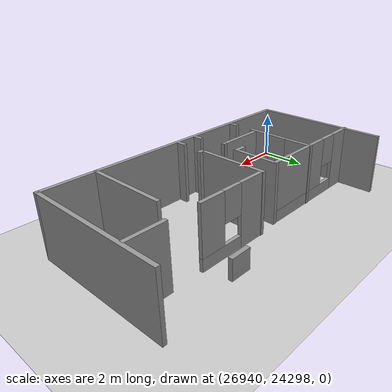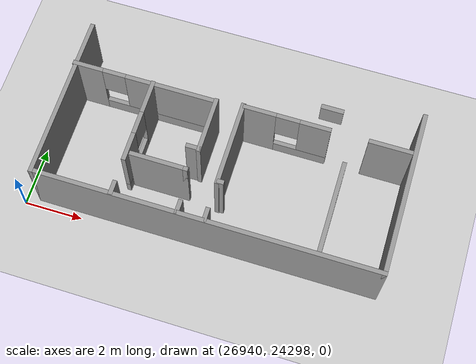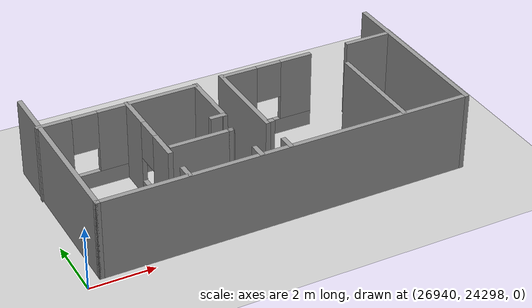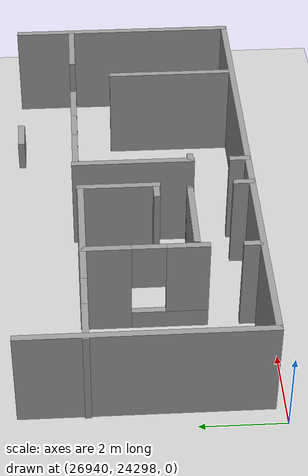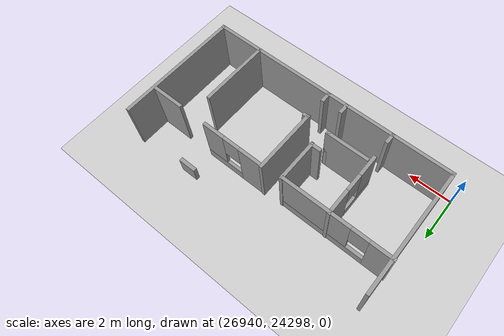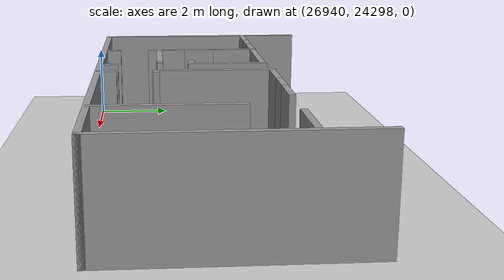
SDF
<sdf version="1.6">
 <world name="default">
  <model name="ground_plane">
   <static>1</static>
   <link name="link">
    <collision name="collision">
     <geometry><plane><normal>0 0 1</normal><size>100 100</size></plane></geometry>
     <surface><friction><ode><mu>100</mu><mu2>50</mu2></ode></friction></surface>
    </collision>
    <visual name="visual">
     <cast_shadows>0</cast_shadows>
     <geometry><plane><normal>0 0 1</normal><size>100 100</size></plane></geometry>
     <material>
      <script><uri>file://media/materials/scripts/gazebo.material</uri><name>Gazebo/Grey</name></script>
     </material>
    </visual>
   </link>
  </model>
  <model name="office01add">
   <pose>-4.3 -4.1 0 0 -0 0</pose>
   <link name="Wall_21">
    <collision name="Wall_21_Collision">
     <geometry><box><size>5.75 0.15 2.5</size></box></geometry>
     <pose>0 0 1.25 0 -0 0</pose>
    </collision>
    <visual name="Wall_21_Visual">
     <pose>0 0 1.25 0 -0 0</pose>
     <geometry><box><size>5.75 0.15 2.5</size></box></geometry>
     <material>
      <script><uri>file://media/materials/scripts/gazebo.material</uri><name>Gazebo/Grey</name></script>
      <ambient>1 1 1 1</ambient>
     </material>
     <meta><layer>0</layer></meta>
    </visual>
    <pose>26944.8 24305.2 0 0 -0 -1.5708</pose>
   </link>
   <link name="Wall_23">
    <collision name="Wall_23_Collision">
     <geometry><box><size>11.75 0.15 2.5</size></box></geometry>
     <pose>0 0 1.25 0 -0 0</pose>
    </collision>
    <visual name="Wall_23_Visual">
     <pose>0 0 1.25 0 -0 0</pose>
     <geometry><box><size>11.75 0.15 2.5</size></box></geometry>
     <material>
      <script><uri>file://media/materials/scripts/gazebo.material</uri><name>Gazebo/Grey</name></script>
      <ambient>1 1 1 1</ambient>
     </material>
     <meta><layer>0</layer></meta>
    </visual>
    <pose>26950.6 24302.4 0 0 -0 0</pose>
   </link>
   <link name="Wall_25">
    <collision name="Wall_25_Collision">
     <geometry><box><size>5.75 0.15 2.5</size></box></geometry>
     <pose>0 0 1.25 0 -0 0</pose>
    </collision>
    <visual name="Wall_25_Visual">
     <pose>0 0 1.25 0 -0 0</pose>
     <geometry><box><size>5.75 0.15 2.5</size></box></geometry>
     <material>
      <script><uri>file://media/materials/scripts/gazebo.material</uri><name>Gazebo/Grey</name></script>
      <ambient>1 1 1 1</ambient>
     </material>
     <meta><layer>0</layer></meta>
    </visual>
    <pose>26956.4 24305.2 0 0 -0 1.5708</pose>
   </link>
   <link name="Wall_27">
    <collision name="Wall_27_Collision">
     <geometry><box><size>3 0.15 2.5</size></box></geometry>
     <pose>0 0 1.25 0 -0 0</pose>
    </collision>
    <visual name="Wall_27_Visual">
     <pose>0 0 1.25 0 -0 0</pose>
     <geometry><box><size>3 0.15 2.5</size></box></geometry>
     <material>
      <script><uri>file://media/materials/scripts/gazebo.material</uri><name>Gazebo/Grey</name></script>
      <ambient>1 1 1 1</ambient>
     </material>
     <meta><layer>0</layer></meta>
    </visual>
    <pose>26950.6 24305.2 0 0 -0 1.5708</pose>
   </link>
   <link name="Wall_32">
    <collision name="Wall_32_Collision">
     <geometry><box><size>0.5 0.15 2.5</size></box></geometry>
     <pose>0 0 1.25 0 -0 0</pose>
    </collision>
    <visual name="Wall_32_Visual">
     <pose>0 0 1.25 0 -0 0</pose>
     <geometry><box><size>0.5 0.15 2.5</size></box></geometry>
     <material>
      <script><uri>file://media/materials/scripts/gazebo.material</uri><name>Gazebo/Grey</name></script>
      <ambient>1 1 1 1</ambient>
     </material>
     <meta><layer>0</layer></meta>
    </visual>
    <pose>26950.6 24302.6 0 0 -0 1.5708</pose>
   </link>
   <link name="Wall_34">
    <pose>26947.2 24306.5 0 0 -0 0.000686</pose>
    <visual name="Wall_34_Visual_0">
     <pose>-1.98582 0 1.25 0 -0 0</pose>
     <geometry><box><size>1.06117 0.15 2.5</size></box></geometry>
     <material>
      <script><uri>file://media/materials/scripts/gazebo.material</uri><name>Gazebo/Grey</name></script>
      <ambient>1 1 1 1</ambient>
     </material>
     <meta><layer>0</layer></meta>
    </visual>
    <collision name="Wall_34_Collision_0">
     <geometry><box><size>1.06117 0.15 2.5</size></box></geometry>
     <pose>-1.98582 0 1.25 0 -0 0</pose>
    </collision>
    <visual name="Wall_34_Visual_1">
     <pose>0.530587 0 0.25 0 -0 0</pose>
     <geometry><box><size>3.97163 0.15 0.5</size></box></geometry>
     <material>
      <script><uri>file://media/materials/scripts/gazebo.material</uri><name>Gazebo/Grey</name></script>
      <ambient>1 1 1 1</ambient>
     </material>
     <meta><layer>0</layer></meta>
    </visual>
    <collision name="Wall_34_Collision_1">
     <geometry><box><size>3.97163 0.15 0.5</size></box></geometry>
     <pose>0.530587 0 0.25 0 -0 0</pose>
    </collision>
    <visual name="Wall_34_Visual_2">
     <pose>0.930587 0 1.5 0 -0 0</pose>
     <geometry><box><size>3.17163 0.15 2</size></box></geometry>
     <material>
      <script><uri>file://media/materials/scripts/gazebo.material</uri><name>Gazebo/Grey</name></script>
      <ambient>1 1 1 1</ambient>
     </material>
     <meta><layer>0</layer></meta>
    </visual>
    <collision name="Wall_34_Collision_2">
     <geometry><box><size>3.17163 0.15 2</size></box></geometry>
     <pose>0.930587 0 1.5 0 -0 0</pose>
    </collision>
    <visual name="Wall_34_Visual_3">
     <pose>-1.05523 0 1.9 0 -0 0</pose>
     <geometry><box><size>0.8 0.15 1.2</size></box></geometry>
     <material>
      <script><uri>file://media/materials/scripts/gazebo.material</uri><name>Gazebo/Grey</name></script>
      <ambient>1 1 1 1</ambient>
     </material>
     <meta><layer>0</layer></meta>
    </visual>
    <collision name="Wall_34_Collision_3">
     <geometry><box><size>0.8 0.15 1.2</size></box></geometry>
     <pose>-1.05523 0 1.9 0 -0 0</pose>
    </collision>
   </link>
   <link name="Wall_36">
    <collision name="Wall_36_Collision">
     <geometry><box><size>0.15 0.15 2.5</size></box></geometry>
     <pose>0 0 1.25 0 -0 0</pose>
    </collision>
    <visual name="Wall_36_Visual">
     <pose>0 0 1.25 0 -0 0</pose>
     <geometry><box><size>0.15 0.15 2.5</size></box></geometry>
     <material>
      <script><uri>file://media/materials/scripts/gazebo.material</uri><name>Gazebo/Grey</name></script>
      <ambient>1 1 1 1</ambient>
     </material>
     <meta><layer>0</layer></meta>
    </visual>
    <pose>26949.5 24303.9 0 0 -0 0</pose>
   </link>
   <link name="Wall_5">
    <collision name="Wall_5_Collision">
     <geometry><box><size>14851 0.15 2.5</size></box></geometry>
     <pose>0 0 1.25 0 -0 0</pose>
    </collision>
    <visual name="Wall_5_Visual">
     <pose>0 0 1.25 0 -0 0</pose>
     <geometry><box><size>14851 0.15 2.5</size></box></geometry>
     <material>
      <script><uri>file://media/materials/scripts/gazebo.material</uri><name>Gazebo/Grey</name></script>
      <ambient>1 1 1 1</ambient>
     </material>
     <meta><layer>0</layer></meta>
    </visual>
    <pose>-20525.7 -20595.2 0 0 -0 -0.523599</pose>
   </link>
   <link name="Wall_65">
    <pose>26947.5 24305.1 0 0 -0 -1.5708</pose>
    <visual name="Wall_65_Visual_0">
     <pose>-0.900493 0 1.25 0 -0 0</pose>
     <geometry><box><size>1.19901 0.15 2.5</size></box></geometry>
     <material>
      <script><uri>file://media/materials/scripts/gazebo.material</uri><name>Gazebo/Grey</name></script>
      <ambient>1 1 1 1</ambient>
     </material>
     <meta><layer>0</layer></meta>
    </visual>
    <collision name="Wall_65_Collision_0">
     <geometry><box><size>1.19901 0.15 2.5</size></box></geometry>
     <pose>-0.900493 0 1.25 0 -0 0</pose>
    </collision>
    <visual name="Wall_65_Visual_1">
     <pose>0.599507 0 0.25 0 -0 0</pose>
     <geometry><box><size>1.80099 0.15 0.5</size></box></geometry>
     <material>
      <script><uri>file://media/materials/scripts/gazebo.material</uri><name>Gazebo/Grey</name></script>
      <ambient>1 1 1 1</ambient>
     </material>
     <meta><layer>0</layer></meta>
    </visual>
    <collision name="Wall_65_Collision_1">
     <geometry><box><size>1.80099 0.15 0.5</size></box></geometry>
     <pose>0.599507 0 0.25 0 -0 0</pose>
    </collision>
    <visual name="Wall_65_Visual_2">
     <pose>0.999507 0 1.5 0 -0 0</pose>
     <geometry><box><size>1.00099 0.15 2</size></box></geometry>
     <material>
      <script><uri>file://media/materials/scripts/gazebo.material</uri><name>Gazebo/Grey</name></script>
      <ambient>1 1 1 1</ambient>
     </material>
     <meta><layer>0</layer></meta>
    </visual>
    <collision name="Wall_65_Collision_2">
     <geometry><box><size>1.00099 0.15 2</size></box></geometry>
     <pose>0.999507 0 1.5 0 -0 0</pose>
    </collision>
    <visual name="Wall_65_Visual_3">
     <pose>0.099014 0 1.9 0 -0 0</pose>
     <geometry><box><size>0.8 0.15 1.2</size></box></geometry>
     <material>
      <script><uri>file://media/materials/scripts/gazebo.material</uri><name>Gazebo/Grey</name></script>
      <ambient>1 1 1 1</ambient>
     </material>
     <meta><layer>0</layer></meta>
    </visual>
    <collision name="Wall_65_Collision_3">
     <geometry><box><size>0.8 0.15 1.2</size></box></geometry>
     <pose>0.099014 0 1.9 0 -0 0</pose>
    </collision>
   </link>
   <link name="Wall_68">
    <collision name="Wall_68_Collision">
     <geometry><box><size>0.15 0.15 2.5</size></box></geometry>
     <pose>0 0 1.25 0 -0 0</pose>
    </collision>
    <visual name="Wall_68_Visual">
     <pose>0 0 1.25 0 -0 0</pose>
     <geometry><box><size>0.15 0.15 2.5</size></box></geometry>
     <material>
      <script><uri>file://media/materials/scripts/gazebo.material</uri><name>Gazebo/Grey</name></script>
      <ambient>1 1 1 1</ambient>
     </material>
     <meta><layer>0</layer></meta>
    </visual>
    <pose>26949.5 24303.9 0 0 -0 0</pose>
   </link>
   <link name="Wall_72">
    <collision name="Wall_72_Collision">
     <geometry><box><size>0.5 0.15 2.5</size></box></geometry>
     <pose>0 0 1.25 0 -0 0</pose>
    </collision>
    <visual name="Wall_72_Visual">
     <pose>0 0 1.25 0 -0 0</pose>
     <geometry><box><size>0.5 0.15 2.5</size></box></geometry>
     <material>
      <script><uri>file://media/materials/scripts/gazebo.material</uri><name>Gazebo/Grey</name></script>
      <ambient>1 1 1 1</ambient>
     </material>
     <meta><layer>0</layer></meta>
    </visual>
    <pose>26947.5 24302.6 0 0 -0 1.5708</pose>
   </link>
   <link name="Wall_74">
    <collision name="Wall_74_Collision">
     <geometry><box><size>0.5 0.15 2.5</size></box></geometry>
     <pose>0 0 1.25 0 -0 0</pose>
    </collision>
    <visual name="Wall_74_Visual">
     <pose>0 0 1.25 0 -0 0</pose>
     <geometry><box><size>0.5 0.15 2.5</size></box></geometry>
     <material>
      <script><uri>file://media/materials/scripts/gazebo.material</uri><name>Gazebo/Grey</name></script>
      <ambient>1 1 1 1</ambient>
     </material>
     <meta><layer>0</layer></meta>
    </visual>
    <pose>26949.7 24302.6 0 0 -0 1.5708</pose>
   </link>
   <link name="Wall_76">
    <pose>26952.1 24306.6 0 0 -0 0</pose>
    <visual name="Wall_76_Visual_0">
     <pose>-0.925943 0 1.25 0 -0 0</pose>
     <geometry><box><size>1.14811 0.15 2.5</size></box></geometry>
     <material>
      <script><uri>file://media/materials/scripts/gazebo.material</uri><name>Gazebo/Grey</name></script>
      <ambient>1 1 1 1</ambient>
     </material>
     <meta><layer>0</layer></meta>
    </visual>
    <collision name="Wall_76_Collision_0">
     <geometry><box><size>1.14811 0.15 2.5</size></box></geometry>
     <pose>-0.925943 0 1.25 0 -0 0</pose>
    </collision>
    <visual name="Wall_76_Visual_1">
     <pose>0.574057 0 0.25 0 -0 0</pose>
     <geometry><box><size>1.85189 0.15 0.5</size></box></geometry>
     <material>
      <script><uri>file://media/materials/scripts/gazebo.material</uri><name>Gazebo/Grey</name></script>
      <ambient>1 1 1 1</ambient>
     </material>
     <meta><layer>0</layer></meta>
    </visual>
    <collision name="Wall_76_Collision_1">
     <geometry><box><size>1.85189 0.15 0.5</size></box></geometry>
     <pose>0.574057 0 0.25 0 -0 0</pose>
    </collision>
    <visual name="Wall_76_Visual_2">
     <pose>0.974057 0 1.5 0 -0 0</pose>
     <geometry><box><size>1.05189 0.15 2</size></box></geometry>
     <material>
      <script><uri>file://media/materials/scripts/gazebo.material</uri><name>Gazebo/Grey</name></script>
      <ambient>1 1 1 1</ambient>
     </material>
     <meta><layer>0</layer></meta>
    </visual>
    <collision name="Wall_76_Collision_2">
     <geometry><box><size>1.05189 0.15 2</size></box></geometry>
     <pose>0.974057 0 1.5 0 -0 0</pose>
    </collision>
    <visual name="Wall_76_Visual_3">
     <pose>0.048114 0 1.9 0 -0 0</pose>
     <geometry><box><size>0.8 0.15 1.2</size></box></geometry>
     <material>
      <script><uri>file://media/materials/scripts/gazebo.material</uri><name>Gazebo/Grey</name></script>
      <ambient>1 1 1 1</ambient>
     </material>
     <meta><layer>0</layer></meta>
    </visual>
    <collision name="Wall_76_Collision_3">
     <geometry><box><size>0.8 0.15 1.2</size></box></geometry>
     <pose>0.048114 0 1.9 0 -0 0</pose>
    </collision>
   </link>
   <link name="Wall_78">
    <collision name="Wall_78_Collision">
     <geometry><box><size>1.5 0.15 2.5</size></box></geometry>
     <pose>0 0 1.25 0 -0 0</pose>
    </collision>
    <visual name="Wall_78_Visual">
     <pose>0 0 1.25 0 -0 0</pose>
     <geometry><box><size>1.5 0.15 2.5</size></box></geometry>
     <material>
      <script><uri>file://media/materials/scripts/gazebo.material</uri><name>Gazebo/Grey</name></script>
      <ambient>1 1 1 1</ambient>
     </material>
     <meta><layer>0</layer></meta>
    </visual>
    <pose>26955.6 24306.6 0 0 -0 0</pose>
   </link>
   <link name="Wall_83">
    <collision name="Wall_83_Collision">
     <geometry><box><size>3.25 0.15 2.5</size></box></geometry>
     <pose>0 0 1.25 0 -0 0</pose>
    </collision>
    <visual name="Wall_83_Visual">
     <pose>0 0 1.25 0 -0 0</pose>
     <geometry><box><size>3.25 0.15 2.5</size></box></geometry>
     <material>
      <script><uri>file://media/materials/scripts/gazebo.material</uri><name>Gazebo/Grey</name></script>
      <ambient>1 1 1 1</ambient>
     </material>
     <meta><layer>0</layer></meta>
    </visual>
    <pose>26954.3 24304 0 0 -0 -1.5708</pose>
   </link>
   <link name="Wall_85">
    <collision name="Wall_85_Collision">
     <geometry><box><size>2 0.15 2.5</size></box></geometry>
     <pose>0 0 1.25 0 -0 0</pose>
    </collision>
    <visual name="Wall_85_Visual">
     <pose>0 0 1.25 0 -0 0</pose>
     <geometry><box><size>2 0.15 2.5</size></box></geometry>
     <material>
      <script><uri>file://media/materials/scripts/gazebo.material</uri><name>Gazebo/Grey</name></script>
      <ambient>1 1 1 1</ambient>
     </material>
     <meta><layer>0</layer></meta>
    </visual>
    <pose>26948.6 24303.9 0 0 -0 3.14159</pose>
   </link>
   <link name="Wall_87">
    <collision name="Wall_87_Collision">
     <geometry><box><size>2 0.15 2.5</size></box></geometry>
     <pose>0 0 1.25 0 -0 0</pose>
    </collision>
    <visual name="Wall_87_Visual">
     <pose>0 0 1.25 0 -0 0</pose>
     <geometry><box><size>2 0.15 2.5</size></box></geometry>
     <material>
      <script><uri>file://media/materials/scripts/gazebo.material</uri><name>Gazebo/Grey</name></script>
      <ambient>1 1 1 1</ambient>
     </material>
     <meta><layer>0</layer></meta>
    </visual>
    <pose>26949.7 24305.6 0 0 -0 -1.5708</pose>
   </link>
   <link name="Wall_88">
    <collision name="Wall_88_Collision">
     <geometry><box><size>0.5 0.15 2.5</size></box></geometry>
     <pose>0 0 1.25 0 -0 0</pose>
    </collision>
    <visual name="Wall_88_Visual">
     <pose>0 0 1.25 0 -0 0</pose>
     <geometry><box><size>0.5 0.15 2.5</size></box></geometry>
     <material>
      <script><uri>file://media/materials/scripts/gazebo.material</uri><name>Gazebo/Grey</name></script>
      <ambient>1 1 1 1</ambient>
     </material>
     <meta><layer>0</layer></meta>
    </visual>
    <pose>26949.5 24304.7 0 0 -0 3.14159</pose>
   </link>
   <link name="Wall_99">
    <collision name="Wall_99_Collision">
     <geometry><box><size>0.25 0.15 2.5</size></box></geometry>
     <pose>0 0 1.25 0 -0 0</pose>
    </collision>
    <visual name="Wall_99_Visual">
     <pose>0 0 1.25 0 -0 0</pose>
     <geometry><box><size>0.25 0.15 2.5</size></box></geometry>
     <material>
      <script><uri>file://media/materials/scripts/gazebo.material</uri><name>Gazebo/Grey</name></script>
      <ambient>1 1 1 1</ambient>
     </material>
     <meta><layer>0</layer></meta>
    </visual>
    <pose>26950.7 24303.8 0 0 -0 0</pose>
   </link>
   <link name="Window_0">
    <collision name="Window_0_Collision">
     <geometry><box><size>0.8 0.17 0.8</size></box></geometry>
     <pose>0 0 0.4 0 -0 0</pose>
    </collision>
    <visual name="Window_0_Visual">
     <pose>0 0 0.4 0 -0 0</pose>
     <geometry><box><size>0.8 0.17 0.8</size></box></geometry>
     <material>
      <script><uri>file://media/materials/scripts/gazebo.material</uri><name>Gazebo/Grey</name></script>
     </material>
    </visual>
    <pose>26953.4 24308 0.5 0 -0 0</pose>
   </link>
   <static>1</static>
  </model>
 </world>
</sdf>
